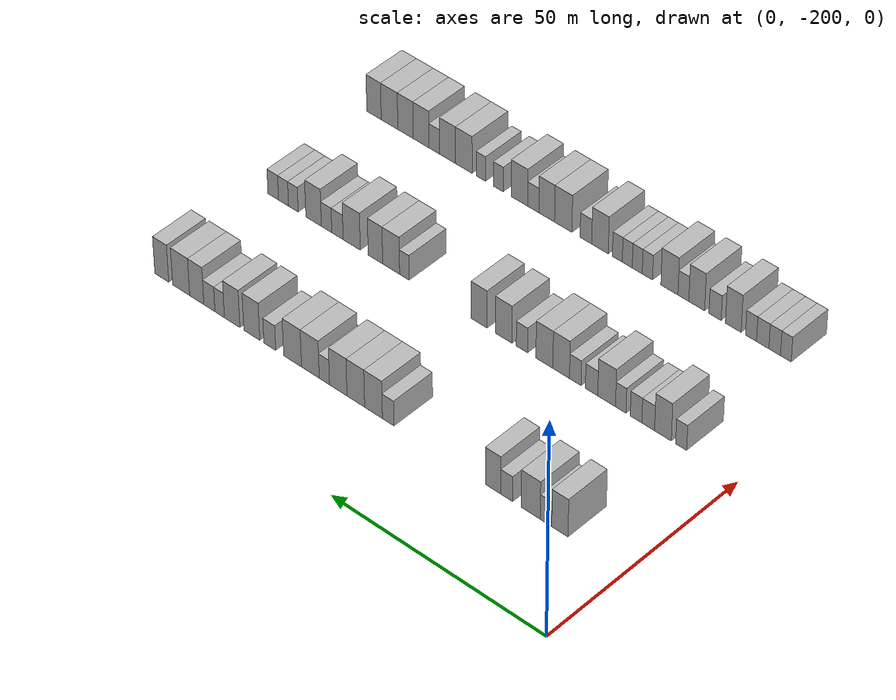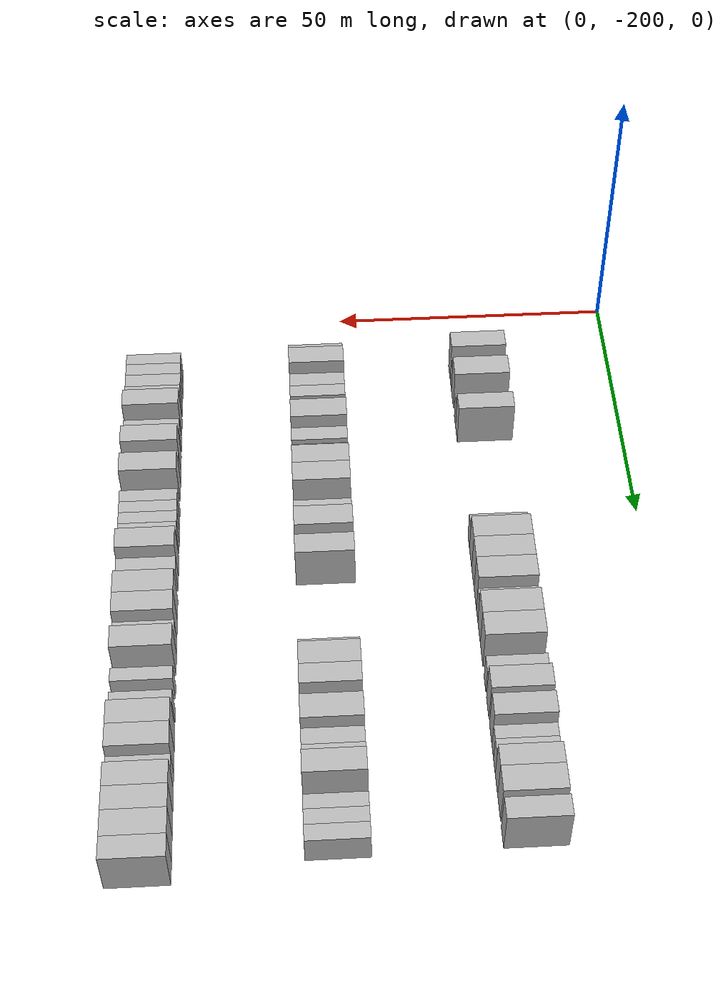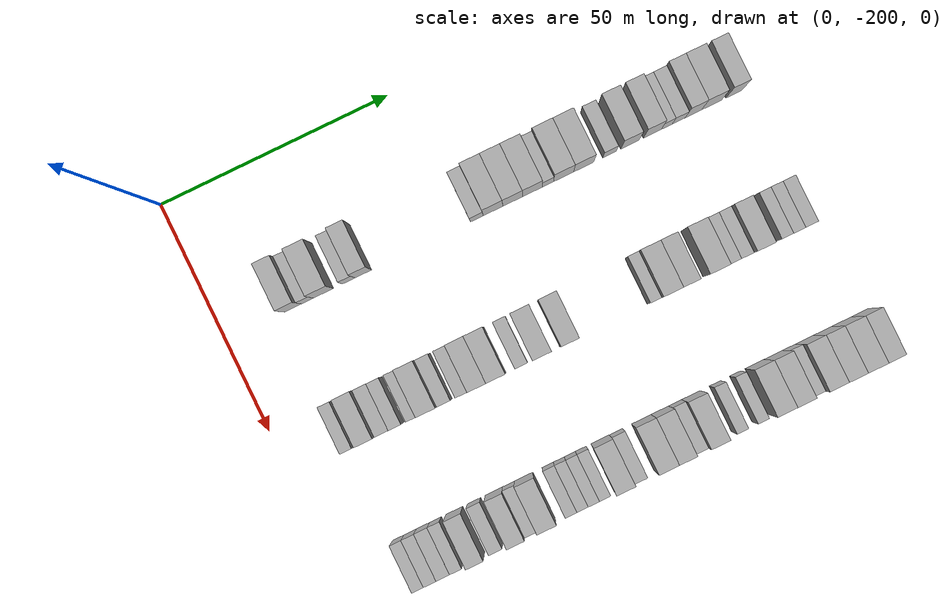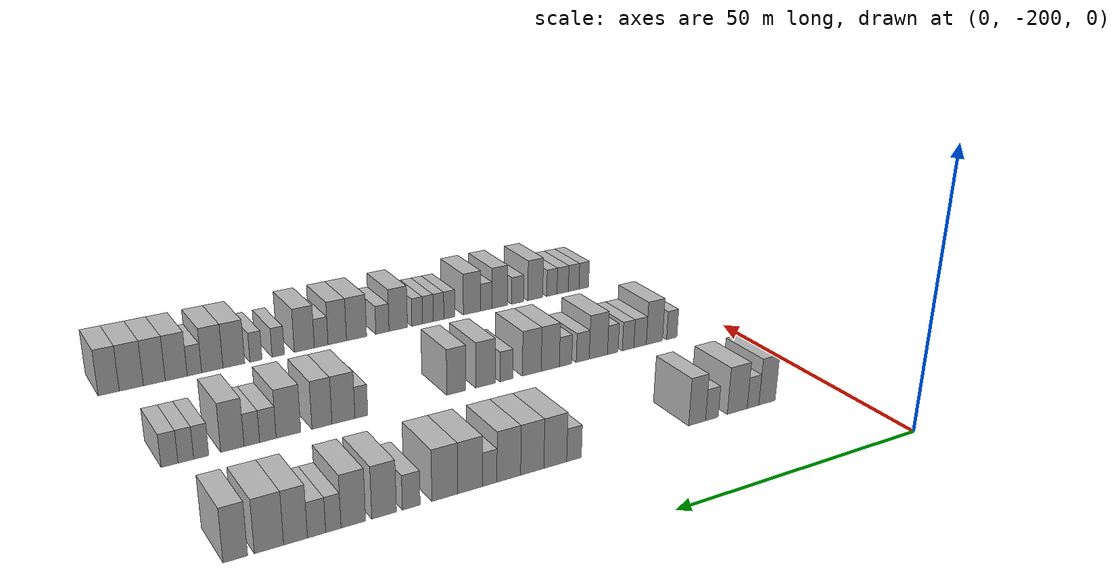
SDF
<sdf version="1.6">
 <world name="default">
  <model name="building_25">
   <static>1</static>
   <pose>25.0000 -185.2030 0 0.000000 0.000000 0.000000</pose>
   <link name="link">
    <pose>0 0 4.50 0 0 0</pose>
    <collision name="collision"><geometry><box><size>10.0000 3.7373 9.0000</size></box></geometry></collision>
    <visual name="visual">
     <cast_shadows>0</cast_shadows>
     <geometry><box><size>10.0000 3.7373 9.0000</size></box></geometry>
     <material>
      <script>
       <uri>model://HANNAS_wall/materials/scripts</uri>
       <uri>model://HANNAS_wall/materials/textures</uri>
       <name>vrc/HANNAS_wall</name>
      </script>
     </material>
    </visual>
   </link>
  </model>
  <model name="building_26">
   <static>1</static>
   <pose>25.0000 -182.0148 0 0.000000 0.000000 0.000000</pose>
   <link name="link">
    <pose>0 0 3.00 0 0 0</pose>
    <collision name="collision"><geometry><box><size>10.0000 2.6391 6.0000</size></box></geometry></collision>
    <visual name="visual">
     <cast_shadows>0</cast_shadows>
     <geometry><box><size>10.0000 2.6391 6.0000</size></box></geometry>
     <material>
      <script>
       <uri>model://HANNAS_wall/materials/scripts</uri>
       <uri>model://HANNAS_wall/materials/textures</uri>
       <name>vrc/HANNAS_wall</name>
      </script>
     </material>
    </visual>
   </link>
  </model>
  <model name="building_27">
   <static>1</static>
   <pose>25.0000 -178.4865 0 0.000000 0.000000 0.000000</pose>
   <link name="link">
    <pose>0 0 4.50 0 0 0</pose>
    <collision name="collision"><geometry><box><size>10.0000 4.4174 9.0000</size></box></geometry></collision>
    <visual name="visual">
     <cast_shadows>0</cast_shadows>
     <geometry><box><size>10.0000 4.4174 9.0000</size></box></geometry>
     <material>
      <script>
       <uri>model://HANNAS_wall/materials/scripts</uri>
       <uri>model://HANNAS_wall/materials/textures</uri>
       <name>vrc/HANNAS_wall</name>
      </script>
     </material>
    </visual>
   </link>
  </model>
  <model name="building_28">
   <static>1</static>
   <pose>25.0000 -172.8996 0 0.000000 0.000000 0.000000</pose>
   <link name="link">
    <pose>0 0 3.00 0 0 0</pose>
    <collision name="collision"><geometry><box><size>10.0000 2.7565 6.0000</size></box></geometry></collision>
    <visual name="visual">
     <cast_shadows>0</cast_shadows>
     <geometry><box><size>10.0000 2.7565 6.0000</size></box></geometry>
     <material>
      <script>
       <uri>model://HANNAS_wall/materials/scripts</uri>
       <uri>model://HANNAS_wall/materials/textures</uri>
       <name>vrc/HANNAS_wall</name>
      </script>
     </material>
    </visual>
   </link>
  </model>
  <model name="building_29">
   <static>1</static>
   <pose>25.0000 -169.7082 0 0.000000 0.000000 0.000000</pose>
   <link name="link">
    <pose>0 0 4.50 0 0 0</pose>
    <collision name="collision"><geometry><box><size>10.0000 3.6262 9.0000</size></box></geometry></collision>
    <visual name="visual">
     <cast_shadows>0</cast_shadows>
     <geometry><box><size>10.0000 3.6262 9.0000</size></box></geometry>
     <material>
      <script>
       <uri>model://HANNAS_wall/materials/scripts</uri>
       <uri>model://HANNAS_wall/materials/textures</uri>
       <name>vrc/HANNAS_wall</name>
      </script>
     </material>
    </visual>
   </link>
  </model>
  <model name="building_30">
   <static>1</static>
   <pose>25.0000 -144.6660 0 0.000000 0.000000 0.000000</pose>
   <link name="link">
    <pose>0 0 3.00 0 0 0</pose>
    <collision name="collision"><geometry><box><size>10.0000 2.8195 6.0000</size></box></geometry></collision>
    <visual name="visual">
     <cast_shadows>0</cast_shadows>
     <geometry><box><size>10.0000 2.8195 6.0000</size></box></geometry>
     <material>
      <script>
       <uri>model://HANNAS_wall/materials/scripts</uri>
       <uri>model://HANNAS_wall/materials/textures</uri>
       <name>vrc/HANNAS_wall</name>
      </script>
     </material>
    </visual>
   </link>
  </model>
  <model name="building_31">
   <static>1</static>
   <pose>25.0000 -141.0924 0 0.000000 0.000000 0.000000</pose>
   <link name="link">
    <pose>0 0 4.50 0 0 0</pose>
    <collision name="collision"><geometry><box><size>10.0000 4.3277 9.0000</size></box></geometry></collision>
    <visual name="visual">
     <cast_shadows>0</cast_shadows>
     <geometry><box><size>10.0000 4.3277 9.0000</size></box></geometry>
     <material>
      <script>
       <uri>model://HANNAS_wall/materials/scripts</uri>
       <uri>model://HANNAS_wall/materials/textures</uri>
       <name>vrc/HANNAS_wall</name>
      </script>
     </material>
    </visual>
   </link>
  </model>
  <model name="building_32">
   <static>1</static>
   <pose>25.0000 -136.7739 0 0.000000 0.000000 0.000000</pose>
   <link name="link">
    <pose>0 0 4.50 0 0 0</pose>
    <collision name="collision"><geometry><box><size>10.0000 4.3092 9.0000</size></box></geometry></collision>
    <visual name="visual">
     <cast_shadows>0</cast_shadows>
     <geometry><box><size>10.0000 4.3092 9.0000</size></box></geometry>
     <material>
      <script>
       <uri>model://HANNAS_wall/materials/scripts</uri>
       <uri>model://HANNAS_wall/materials/textures</uri>
       <name>vrc/HANNAS_wall</name>
      </script>
     </material>
    </visual>
   </link>
  </model>
  <model name="building_33">
   <static>1</static>
   <pose>25.0000 -132.4627 0 0.000000 0.000000 0.000000</pose>
   <link name="link">
    <pose>0 0 4.50 0 0 0</pose>
    <collision name="collision"><geometry><box><size>10.0000 4.3133 9.0000</size></box></geometry></collision>
    <visual name="visual">
     <cast_shadows>0</cast_shadows>
     <geometry><box><size>10.0000 4.3133 9.0000</size></box></geometry>
     <material>
      <script>
       <uri>model://HANNAS_wall/materials/scripts</uri>
       <uri>model://HANNAS_wall/materials/textures</uri>
       <name>vrc/HANNAS_wall</name>
      </script>
     </material>
    </visual>
   </link>
  </model>
  <model name="building_34">
   <static>1</static>
   <pose>25.0000 -129.0370 0 0.000000 0.000000 0.000000</pose>
   <link name="link">
    <pose>0 0 3.00 0 0 0</pose>
    <collision name="collision"><geometry><box><size>10.0000 2.5381 6.0000</size></box></geometry></collision>
    <visual name="visual">
     <cast_shadows>0</cast_shadows>
     <geometry><box><size>10.0000 2.5381 6.0000</size></box></geometry>
     <material>
      <script>
       <uri>model://HANNAS_wall/materials/scripts</uri>
       <uri>model://HANNAS_wall/materials/textures</uri>
       <name>vrc/HANNAS_wall</name>
      </script>
     </material>
    </visual>
   </link>
  </model>
  <model name="building_35">
   <static>1</static>
   <pose>25.0000 -125.5571 0 0.000000 0.000000 0.000000</pose>
   <link name="link">
    <pose>0 0 4.50 0 0 0</pose>
    <collision name="collision"><geometry><box><size>10.0000 4.4215 9.0000</size></box></geometry></collision>
    <visual name="visual">
     <cast_shadows>0</cast_shadows>
     <geometry><box><size>10.0000 4.4215 9.0000</size></box></geometry>
     <material>
      <script>
       <uri>model://HANNAS_wall/materials/scripts</uri>
       <uri>model://HANNAS_wall/materials/textures</uri>
       <name>vrc/HANNAS_wall</name>
      </script>
     </material>
    </visual>
   </link>
  </model>
  <model name="building_36">
   <static>1</static>
   <pose>25.0000 -121.1176 0 0.000000 0.000000 0.000000</pose>
   <link name="link">
    <pose>0 0 4.50 0 0 0</pose>
    <collision name="collision"><geometry><box><size>10.0000 4.4574 9.0000</size></box></geometry></collision>
    <visual name="visual">
     <cast_shadows>0</cast_shadows>
     <geometry><box><size>10.0000 4.4574 9.0000</size></box></geometry>
     <material>
      <script>
       <uri>model://HANNAS_wall/materials/scripts</uri>
       <uri>model://HANNAS_wall/materials/textures</uri>
       <name>vrc/HANNAS_wall</name>
      </script>
     </material>
    </visual>
   </link>
  </model>
  <model name="building_37">
   <static>1</static>
   <pose>25.0000 -115.3986 0 0.000000 0.000000 0.000000</pose>
   <link name="link">
    <pose>0 0 3.00 0 0 0</pose>
    <collision name="collision"><geometry><box><size>10.0000 2.9807 6.0000</size></box></geometry></collision>
    <visual name="visual">
     <cast_shadows>0</cast_shadows>
     <geometry><box><size>10.0000 2.9807 6.0000</size></box></geometry>
     <material>
      <script>
       <uri>model://HANNAS_wall/materials/scripts</uri>
       <uri>model://HANNAS_wall/materials/textures</uri>
       <name>vrc/HANNAS_wall</name>
      </script>
     </material>
    </visual>
   </link>
  </model>
  <model name="building_38">
   <static>1</static>
   <pose>25.0000 -110.8825 0 0.000000 0.000000 0.000000</pose>
   <link name="link">
    <pose>0 0 4.50 0 0 0</pose>
    <collision name="collision"><geometry><box><size>10.0000 4.0514 9.0000</size></box></geometry></collision>
    <visual name="visual">
     <cast_shadows>0</cast_shadows>
     <geometry><box><size>10.0000 4.0514 9.0000</size></box></geometry>
     <material>
      <script>
       <uri>model://HANNAS_wall/materials/scripts</uri>
       <uri>model://HANNAS_wall/materials/textures</uri>
       <name>vrc/HANNAS_wall</name>
      </script>
     </material>
    </visual>
   </link>
  </model>
  <model name="building_39">
   <static>1</static>
   <pose>25.0000 -105.8816 0 0.000000 0.000000 0.000000</pose>
   <link name="link">
    <pose>0 0 4.50 0 0 0</pose>
    <collision name="collision"><geometry><box><size>10.0000 3.9504 9.0000</size></box></geometry></collision>
    <visual name="visual">
     <cast_shadows>0</cast_shadows>
     <geometry><box><size>10.0000 3.9504 9.0000</size></box></geometry>
     <material>
      <script>
       <uri>model://HANNAS_wall/materials/scripts</uri>
       <uri>model://HANNAS_wall/materials/textures</uri>
       <name>vrc/HANNAS_wall</name>
      </script>
     </material>
    </visual>
   </link>
  </model>
  <model name="building_40">
   <static>1</static>
   <pose>25.0000 -102.6964 0 0.000000 0.000000 0.000000</pose>
   <link name="link">
    <pose>0 0 3.00 0 0 0</pose>
    <collision name="collision"><geometry><box><size>10.0000 2.4201 6.0000</size></box></geometry></collision>
    <visual name="visual">
     <cast_shadows>0</cast_shadows>
     <geometry><box><size>10.0000 2.4201 6.0000</size></box></geometry>
     <material>
      <script>
       <uri>model://HANNAS_wall/materials/scripts</uri>
       <uri>model://HANNAS_wall/materials/textures</uri>
       <name>vrc/HANNAS_wall</name>
      </script>
     </material>
    </visual>
   </link>
  </model>
  <model name="building_41">
   <static>1</static>
   <pose>25.0000 -100.0586 0 0.000000 0.000000 0.000000</pose>
   <link name="link">
    <pose>0 0 3.00 0 0 0</pose>
    <collision name="collision"><geometry><box><size>10.0000 2.8555 6.0000</size></box></geometry></collision>
    <visual name="visual">
     <cast_shadows>0</cast_shadows>
     <geometry><box><size>10.0000 2.8555 6.0000</size></box></geometry>
     <material>
      <script>
       <uri>model://HANNAS_wall/materials/scripts</uri>
       <uri>model://HANNAS_wall/materials/textures</uri>
       <name>vrc/HANNAS_wall</name>
      </script>
     </material>
    </visual>
   </link>
  </model>
  <model name="building_42">
   <static>1</static>
   <pose>25.0000 -96.8049 0 0.000000 0.000000 0.000000</pose>
   <link name="link">
    <pose>0 0 4.50 0 0 0</pose>
    <collision name="collision"><geometry><box><size>10.0000 3.6517 9.0000</size></box></geometry></collision>
    <visual name="visual">
     <cast_shadows>0</cast_shadows>
     <geometry><box><size>10.0000 3.6517 9.0000</size></box></geometry>
     <material>
      <script>
       <uri>model://HANNAS_wall/materials/scripts</uri>
       <uri>model://HANNAS_wall/materials/textures</uri>
       <name>vrc/HANNAS_wall</name>
      </script>
     </material>
    </visual>
   </link>
  </model>
  <model name="building_43">
   <static>1</static>
   <pose>25.0000 -92.7702 0 0.000000 0.000000 0.000000</pose>
   <link name="link">
    <pose>0 0 4.50 0 0 0</pose>
    <collision name="collision"><geometry><box><size>10.0000 4.4177 9.0000</size></box></geometry></collision>
    <visual name="visual">
     <cast_shadows>0</cast_shadows>
     <geometry><box><size>10.0000 4.4177 9.0000</size></box></geometry>
     <material>
      <script>
       <uri>model://HANNAS_wall/materials/scripts</uri>
       <uri>model://HANNAS_wall/materials/textures</uri>
       <name>vrc/HANNAS_wall</name>
      </script>
     </material>
    </visual>
   </link>
  </model>
  <model name="building_44">
   <static>1</static>
   <pose>25.0000 -87.7574 0 0.000000 0.000000 0.000000</pose>
   <link name="link">
    <pose>0 0 4.50 0 0 0</pose>
    <collision name="collision"><geometry><box><size>10.0000 3.6081 9.0000</size></box></geometry></collision>
    <visual name="visual">
     <cast_shadows>0</cast_shadows>
     <geometry><box><size>10.0000 3.6081 9.0000</size></box></geometry>
     <material>
      <script>
       <uri>model://HANNAS_wall/materials/scripts</uri>
       <uri>model://HANNAS_wall/materials/textures</uri>
       <name>vrc/HANNAS_wall</name>
      </script>
     </material>
    </visual>
   </link>
  </model>
  <model name="building_166">
   <static>1</static>
   <pose>55.0000 -187.0393 0 0.000000 0.000000 0.000000</pose>
   <link name="link">
    <pose>0 0 3.00 0 0 0</pose>
    <collision name="collision"><geometry><box><size>10.0000 2.5420 6.0000</size></box></geometry></collision>
    <visual name="visual">
     <cast_shadows>0</cast_shadows>
     <geometry><box><size>10.0000 2.5420 6.0000</size></box></geometry>
     <material>
      <script>
       <uri>model://HANNAS_wall/materials/scripts</uri>
       <uri>model://HANNAS_wall/materials/textures</uri>
       <name>vrc/HANNAS_wall</name>
      </script>
     </material>
    </visual>
   </link>
  </model>
  <model name="building_167">
   <static>1</static>
   <pose>55.0000 -182.8317 0 0.000000 0.000000 0.000000</pose>
   <link name="link">
    <pose>0 0 4.50 0 0 0</pose>
    <collision name="collision"><geometry><box><size>10.0000 3.8733 9.0000</size></box></geometry></collision>
    <visual name="visual">
     <cast_shadows>0</cast_shadows>
     <geometry><box><size>10.0000 3.8733 9.0000</size></box></geometry>
     <material>
      <script>
       <uri>model://HANNAS_wall/materials/scripts</uri>
       <uri>model://HANNAS_wall/materials/textures</uri>
       <name>vrc/HANNAS_wall</name>
      </script>
     </material>
    </visual>
   </link>
  </model>
  <model name="building_168">
   <static>1</static>
   <pose>55.0000 -179.4108 0 0.000000 0.000000 0.000000</pose>
   <link name="link">
    <pose>0 0 3.00 0 0 0</pose>
    <collision name="collision"><geometry><box><size>10.0000 2.9685 6.0000</size></box></geometry></collision>
    <visual name="visual">
     <cast_shadows>0</cast_shadows>
     <geometry><box><size>10.0000 2.9685 6.0000</size></box></geometry>
     <material>
      <script>
       <uri>model://HANNAS_wall/materials/scripts</uri>
       <uri>model://HANNAS_wall/materials/textures</uri>
       <name>vrc/HANNAS_wall</name>
      </script>
     </material>
    </visual>
   </link>
  </model>
  <model name="building_169">
   <static>1</static>
   <pose>55.0000 -176.5748 0 0.000000 0.000000 0.000000</pose>
   <link name="link">
    <pose>0 0 3.00 0 0 0</pose>
    <collision name="collision"><geometry><box><size>10.0000 2.7036 6.0000</size></box></geometry></collision>
    <visual name="visual">
     <cast_shadows>0</cast_shadows>
     <geometry><box><size>10.0000 2.7036 6.0000</size></box></geometry>
     <material>
      <script>
       <uri>model://HANNAS_wall/materials/scripts</uri>
       <uri>model://HANNAS_wall/materials/textures</uri>
       <name>vrc/HANNAS_wall</name>
      </script>
     </material>
    </visual>
   </link>
  </model>
  <model name="building_170">
   <static>1</static>
   <pose>55.0000 -172.9996 0 0.000000 0.000000 0.000000</pose>
   <link name="link">
    <pose>0 0 3.00 0 0 0</pose>
    <collision name="collision"><geometry><box><size>10.0000 2.4468 6.0000</size></box></geometry></collision>
    <visual name="visual">
     <cast_shadows>0</cast_shadows>
     <geometry><box><size>10.0000 2.4468 6.0000</size></box></geometry>
     <material>
      <script>
       <uri>model://HANNAS_wall/materials/scripts</uri>
       <uri>model://HANNAS_wall/materials/textures</uri>
       <name>vrc/HANNAS_wall</name>
      </script>
     </material>
    </visual>
   </link>
  </model>
  <model name="building_171">
   <static>1</static>
   <pose>55.0000 -169.6840 0 0.000000 0.000000 0.000000</pose>
   <link name="link">
    <pose>0 0 4.50 0 0 0</pose>
    <collision name="collision"><geometry><box><size>10.0000 4.1843 9.0000</size></box></geometry></collision>
    <visual name="visual">
     <cast_shadows>0</cast_shadows>
     <geometry><box><size>10.0000 4.1843 9.0000</size></box></geometry>
     <material>
      <script>
       <uri>model://HANNAS_wall/materials/scripts</uri>
       <uri>model://HANNAS_wall/materials/textures</uri>
       <name>vrc/HANNAS_wall</name>
      </script>
     </material>
    </visual>
   </link>
  </model>
  <model name="building_172">
   <static>1</static>
   <pose>55.0000 -166.1219 0 0.000000 0.000000 0.000000</pose>
   <link name="link">
    <pose>0 0 3.00 0 0 0</pose>
    <collision name="collision"><geometry><box><size>10.0000 2.9399 6.0000</size></box></geometry></collision>
    <visual name="visual">
     <cast_shadows>0</cast_shadows>
     <geometry><box><size>10.0000 2.9399 6.0000</size></box></geometry>
     <material>
      <script>
       <uri>model://HANNAS_wall/materials/scripts</uri>
       <uri>model://HANNAS_wall/materials/textures</uri>
       <name>vrc/HANNAS_wall</name>
      </script>
     </material>
    </visual>
   </link>
  </model>
  <model name="building_173">
   <static>1</static>
   <pose>55.0000 -162.2705 0 0.000000 0.000000 0.000000</pose>
   <link name="link">
    <pose>0 0 3.00 0 0 0</pose>
    <collision name="collision"><geometry><box><size>10.0000 2.7629 6.0000</size></box></geometry></collision>
    <visual name="visual">
     <cast_shadows>0</cast_shadows>
     <geometry><box><size>10.0000 2.7629 6.0000</size></box></geometry>
     <material>
      <script>
       <uri>model://HANNAS_wall/materials/scripts</uri>
       <uri>model://HANNAS_wall/materials/textures</uri>
       <name>vrc/HANNAS_wall</name>
      </script>
     </material>
    </visual>
   </link>
  </model>
  <model name="building_174">
   <static>1</static>
   <pose>55.0000 -158.9025 0 0.000000 0.000000 0.000000</pose>
   <link name="link">
    <pose>0 0 4.50 0 0 0</pose>
    <collision name="collision"><geometry><box><size>10.0000 3.9733 9.0000</size></box></geometry></collision>
    <visual name="visual">
     <cast_shadows>0</cast_shadows>
     <geometry><box><size>10.0000 3.9733 9.0000</size></box></geometry>
     <material>
      <script>
       <uri>model://HANNAS_wall/materials/scripts</uri>
       <uri>model://HANNAS_wall/materials/textures</uri>
       <name>vrc/HANNAS_wall</name>
      </script>
     </material>
    </visual>
   </link>
  </model>
  <model name="building_175">
   <static>1</static>
   <pose>55.0000 -154.8757 0 0.000000 0.000000 0.000000</pose>
   <link name="link">
    <pose>0 0 4.50 0 0 0</pose>
    <collision name="collision"><geometry><box><size>10.0000 4.0803 9.0000</size></box></geometry></collision>
    <visual name="visual">
     <cast_shadows>0</cast_shadows>
     <geometry><box><size>10.0000 4.0803 9.0000</size></box></geometry>
     <material>
      <script>
       <uri>model://HANNAS_wall/materials/scripts</uri>
       <uri>model://HANNAS_wall/materials/textures</uri>
       <name>vrc/HANNAS_wall</name>
      </script>
     </material>
    </visual>
   </link>
  </model>
  <model name="building_176">
   <static>1</static>
   <pose>55.0000 -149.4608 0 0.000000 0.000000 0.000000</pose>
   <link name="link">
    <pose>0 0 3.00 0 0 0</pose>
    <collision name="collision"><geometry><box><size>10.0000 2.7494 6.0000</size></box></geometry></collision>
    <visual name="visual">
     <cast_shadows>0</cast_shadows>
     <geometry><box><size>10.0000 2.7494 6.0000</size></box></geometry>
     <material>
      <script>
       <uri>model://HANNAS_wall/materials/scripts</uri>
       <uri>model://HANNAS_wall/materials/textures</uri>
       <name>vrc/HANNAS_wall</name>
      </script>
     </material>
    </visual>
   </link>
  </model>
  <model name="building_177">
   <static>1</static>
   <pose>55.0000 -145.0550 0 0.000000 0.000000 0.000000</pose>
   <link name="link">
    <pose>0 0 4.50 0 0 0</pose>
    <collision name="collision"><geometry><box><size>10.0000 4.0623 9.0000</size></box></geometry></collision>
    <visual name="visual">
     <cast_shadows>0</cast_shadows>
     <geometry><box><size>10.0000 4.0623 9.0000</size></box></geometry>
     <material>
      <script>
       <uri>model://HANNAS_wall/materials/scripts</uri>
       <uri>model://HANNAS_wall/materials/textures</uri>
       <name>vrc/HANNAS_wall</name>
      </script>
     </material>
    </visual>
   </link>
  </model>
  <model name="building_178">
   <static>1</static>
   <pose>55.0000 -139.0756 0 0.000000 0.000000 0.000000</pose>
   <link name="link">
    <pose>0 0 4.50 0 0 0</pose>
    <collision name="collision"><geometry><box><size>10.0000 3.8965 9.0000</size></box></geometry></collision>
    <visual name="visual">
     <cast_shadows>0</cast_shadows>
     <geometry><box><size>10.0000 3.8965 9.0000</size></box></geometry>
     <material>
      <script>
       <uri>model://HANNAS_wall/materials/scripts</uri>
       <uri>model://HANNAS_wall/materials/textures</uri>
       <name>vrc/HANNAS_wall</name>
      </script>
     </material>
    </visual>
   </link>
  </model>
  <model name="building_179">
   <static>1</static>
   <pose>55.0000 -120.5068 0 0.000000 0.000000 0.000000</pose>
   <link name="link">
    <pose>0 0 3.00 0 0 0</pose>
    <collision name="collision"><geometry><box><size>10.0000 2.4137 6.0000</size></box></geometry></collision>
    <visual name="visual">
     <cast_shadows>0</cast_shadows>
     <geometry><box><size>10.0000 2.4137 6.0000</size></box></geometry>
     <material>
      <script>
       <uri>model://HANNAS_wall/materials/scripts</uri>
       <uri>model://HANNAS_wall/materials/textures</uri>
       <name>vrc/HANNAS_wall</name>
      </script>
     </material>
    </visual>
   </link>
  </model>
  <model name="building_180">
   <static>1</static>
   <pose>55.0000 -117.1706 0 0.000000 0.000000 0.000000</pose>
   <link name="link">
    <pose>0 0 4.50 0 0 0</pose>
    <collision name="collision"><geometry><box><size>10.0000 4.2585 9.0000</size></box></geometry></collision>
    <visual name="visual">
     <cast_shadows>0</cast_shadows>
     <geometry><box><size>10.0000 4.2585 9.0000</size></box></geometry>
     <material>
      <script>
       <uri>model://HANNAS_wall/materials/scripts</uri>
       <uri>model://HANNAS_wall/materials/textures</uri>
       <name>vrc/HANNAS_wall</name>
      </script>
     </material>
    </visual>
   </link>
  </model>
  <model name="building_181">
   <static>1</static>
   <pose>55.0000 -113.2096 0 0.000000 0.000000 0.000000</pose>
   <link name="link">
    <pose>0 0 4.50 0 0 0</pose>
    <collision name="collision"><geometry><box><size>10.0000 3.6636 9.0000</size></box></geometry></collision>
    <visual name="visual">
     <cast_shadows>0</cast_shadows>
     <geometry><box><size>10.0000 3.6636 9.0000</size></box></geometry>
     <material>
      <script>
       <uri>model://HANNAS_wall/materials/scripts</uri>
       <uri>model://HANNAS_wall/materials/textures</uri>
       <name>vrc/HANNAS_wall</name>
      </script>
     </material>
    </visual>
   </link>
  </model>
  <model name="building_182">
   <static>1</static>
   <pose>55.0000 -107.1885 0 0.000000 0.000000 0.000000</pose>
   <link name="link">
    <pose>0 0 4.50 0 0 0</pose>
    <collision name="collision"><geometry><box><size>10.0000 4.3784 9.0000</size></box></geometry></collision>
    <visual name="visual">
     <cast_shadows>0</cast_shadows>
     <geometry><box><size>10.0000 4.3784 9.0000</size></box></geometry>
     <material>
      <script>
       <uri>model://HANNAS_wall/materials/scripts</uri>
       <uri>model://HANNAS_wall/materials/textures</uri>
       <name>vrc/HANNAS_wall</name>
      </script>
     </material>
    </visual>
   </link>
  </model>
  <model name="building_183">
   <static>1</static>
   <pose>55.0000 -103.5472 0 0.000000 0.000000 0.000000</pose>
   <link name="link">
    <pose>0 0 3.00 0 0 0</pose>
    <collision name="collision"><geometry><box><size>10.0000 2.9043 6.0000</size></box></geometry></collision>
    <visual name="visual">
     <cast_shadows>0</cast_shadows>
     <geometry><box><size>10.0000 2.9043 6.0000</size></box></geometry>
     <material>
      <script>
       <uri>model://HANNAS_wall/materials/scripts</uri>
       <uri>model://HANNAS_wall/materials/textures</uri>
       <name>vrc/HANNAS_wall</name>
      </script>
     </material>
    </visual>
   </link>
  </model>
  <model name="building_184">
   <static>1</static>
   <pose>55.0000 -100.7546 0 0.000000 0.000000 0.000000</pose>
   <link name="link">
    <pose>0 0 3.00 0 0 0</pose>
    <collision name="collision"><geometry><box><size>10.0000 2.6809 6.0000</size></box></geometry></collision>
    <visual name="visual">
     <cast_shadows>0</cast_shadows>
     <geometry><box><size>10.0000 2.6809 6.0000</size></box></geometry>
     <material>
      <script>
       <uri>model://HANNAS_wall/materials/scripts</uri>
       <uri>model://HANNAS_wall/materials/textures</uri>
       <name>vrc/HANNAS_wall</name>
      </script>
     </material>
    </visual>
   </link>
  </model>
  <model name="building_185">
   <static>1</static>
   <pose>55.0000 -97.4168 0 0.000000 0.000000 0.000000</pose>
   <link name="link">
    <pose>0 0 4.50 0 0 0</pose>
    <collision name="collision"><geometry><box><size>10.0000 3.9946 9.0000</size></box></geometry></collision>
    <visual name="visual">
     <cast_shadows>0</cast_shadows>
     <geometry><box><size>10.0000 3.9946 9.0000</size></box></geometry>
     <material>
      <script>
       <uri>model://HANNAS_wall/materials/scripts</uri>
       <uri>model://HANNAS_wall/materials/textures</uri>
       <name>vrc/HANNAS_wall</name>
      </script>
     </material>
    </visual>
   </link>
  </model>
  <model name="building_186">
   <static>1</static>
   <pose>55.0000 -92.1649 0 0.000000 0.000000 0.000000</pose>
   <link name="link">
    <pose>0 0 3.00 0 0 0</pose>
    <collision name="collision"><geometry><box><size>10.0000 2.5092 6.0000</size></box></geometry></collision>
    <visual name="visual">
     <cast_shadows>0</cast_shadows>
     <geometry><box><size>10.0000 2.5092 6.0000</size></box></geometry>
     <material>
      <script>
       <uri>model://HANNAS_wall/materials/scripts</uri>
       <uri>model://HANNAS_wall/materials/textures</uri>
       <name>vrc/HANNAS_wall</name>
      </script>
     </material>
    </visual>
   </link>
  </model>
  <model name="building_187">
   <static>1</static>
   <pose>55.0000 -89.6146 0 0.000000 0.000000 0.000000</pose>
   <link name="link">
    <pose>0 0 3.00 0 0 0</pose>
    <collision name="collision"><geometry><box><size>10.0000 2.5914 6.0000</size></box></geometry></collision>
    <visual name="visual">
     <cast_shadows>0</cast_shadows>
     <geometry><box><size>10.0000 2.5914 6.0000</size></box></geometry>
     <material>
      <script>
       <uri>model://HANNAS_wall/materials/scripts</uri>
       <uri>model://HANNAS_wall/materials/textures</uri>
       <name>vrc/HANNAS_wall</name>
      </script>
     </material>
    </visual>
   </link>
  </model>
  <model name="building_188">
   <static>1</static>
   <pose>55.0000 -86.9387 0 0.000000 0.000000 0.000000</pose>
   <link name="link">
    <pose>0 0 3.00 0 0 0</pose>
    <collision name="collision"><geometry><box><size>10.0000 2.7605 6.0000</size></box></geometry></collision>
    <visual name="visual">
     <cast_shadows>0</cast_shadows>
     <geometry><box><size>10.0000 2.7605 6.0000</size></box></geometry>
     <material>
      <script>
       <uri>model://HANNAS_wall/materials/scripts</uri>
       <uri>model://HANNAS_wall/materials/textures</uri>
       <name>vrc/HANNAS_wall</name>
      </script>
     </material>
    </visual>
   </link>
  </model>
  <model name="building_300">
   <static>1</static>
   <pose>85.0000 -186.1632 0 0.000000 0.000000 0.000000</pose>
   <link name="link">
    <pose>0 0 3.00 0 0 0</pose>
    <collision name="collision"><geometry><box><size>10.0000 2.4941 6.0000</size></box></geometry></collision>
    <visual name="visual">
     <cast_shadows>0</cast_shadows>
     <geometry><box><size>10.0000 2.4941 6.0000</size></box></geometry>
     <material>
      <script>
       <uri>model://HANNAS_wall/materials/scripts</uri>
       <uri>model://HANNAS_wall/materials/textures</uri>
       <name>vrc/HANNAS_wall</name>
      </script>
     </material>
    </visual>
   </link>
  </model>
  <model name="building_301">
   <static>1</static>
   <pose>85.0000 -183.5627 0 0.000000 0.000000 0.000000</pose>
   <link name="link">
    <pose>0 0 3.00 0 0 0</pose>
    <collision name="collision"><geometry><box><size>10.0000 2.7068 6.0000</size></box></geometry></collision>
    <visual name="visual">
     <cast_shadows>0</cast_shadows>
     <geometry><box><size>10.0000 2.7068 6.0000</size></box></geometry>
     <material>
      <script>
       <uri>model://HANNAS_wall/materials/scripts</uri>
       <uri>model://HANNAS_wall/materials/textures</uri>
       <name>vrc/HANNAS_wall</name>
      </script>
     </material>
    </visual>
   </link>
  </model>
  <model name="building_302">
   <static>1</static>
   <pose>85.0000 -180.7699 0 0.000000 0.000000 0.000000</pose>
   <link name="link">
    <pose>0 0 3.00 0 0 0</pose>
    <collision name="collision"><geometry><box><size>10.0000 2.8789 6.0000</size></box></geometry></collision>
    <visual name="visual">
     <cast_shadows>0</cast_shadows>
     <geometry><box><size>10.0000 2.8789 6.0000</size></box></geometry>
     <material>
      <script>
       <uri>model://HANNAS_wall/materials/scripts</uri>
       <uri>model://HANNAS_wall/materials/textures</uri>
       <name>vrc/HANNAS_wall</name>
      </script>
     </material>
    </visual>
   </link>
  </model>
  <model name="building_303">
   <static>1</static>
   <pose>85.0000 -178.0381 0 0.000000 0.000000 0.000000</pose>
   <link name="link">
    <pose>0 0 3.00 0 0 0</pose>
    <collision name="collision"><geometry><box><size>10.0000 2.5845 6.0000</size></box></geometry></collision>
    <visual name="visual">
     <cast_shadows>0</cast_shadows>
     <geometry><box><size>10.0000 2.5845 6.0000</size></box></geometry>
     <material>
      <script>
       <uri>model://HANNAS_wall/materials/scripts</uri>
       <uri>model://HANNAS_wall/materials/textures</uri>
       <name>vrc/HANNAS_wall</name>
      </script>
     </material>
    </visual>
   </link>
  </model>
  <model name="building_304">
   <static>1</static>
   <pose>85.0000 -173.8910 0 0.000000 0.000000 0.000000</pose>
   <link name="link">
    <pose>0 0 4.50 0 0 0</pose>
    <collision name="collision"><geometry><box><size>10.0000 3.7096 9.0000</size></box></geometry></collision>
    <visual name="visual">
     <cast_shadows>0</cast_shadows>
     <geometry><box><size>10.0000 3.7096 9.0000</size></box></geometry>
     <material>
      <script>
       <uri>model://HANNAS_wall/materials/scripts</uri>
       <uri>model://HANNAS_wall/materials/textures</uri>
       <name>vrc/HANNAS_wall</name>
      </script>
     </material>
    </visual>
   </link>
  </model>
  <model name="building_305">
   <static>1</static>
   <pose>85.0000 -169.5780 0 0.000000 0.000000 0.000000</pose>
   <link name="link">
    <pose>0 0 3.00 0 0 0</pose>
    <collision name="collision"><geometry><box><size>10.0000 2.9165 6.0000</size></box></geometry></collision>
    <visual name="visual">
     <cast_shadows>0</cast_shadows>
     <geometry><box><size>10.0000 2.9165 6.0000</size></box></geometry>
     <material>
      <script>
       <uri>model://HANNAS_wall/materials/scripts</uri>
       <uri>model://HANNAS_wall/materials/textures</uri>
       <name>vrc/HANNAS_wall</name>
      </script>
     </material>
    </visual>
   </link>
  </model>
  <model name="building_306">
   <static>1</static>
   <pose>85.0000 -165.2330 0 0.000000 0.000000 0.000000</pose>
   <link name="link">
    <pose>0 0 4.50 0 0 0</pose>
    <collision name="collision"><geometry><box><size>10.0000 3.7735 9.0000</size></box></geometry></collision>
    <visual name="visual">
     <cast_shadows>0</cast_shadows>
     <geometry><box><size>10.0000 3.7735 9.0000</size></box></geometry>
     <material>
      <script>
       <uri>model://HANNAS_wall/materials/scripts</uri>
       <uri>model://HANNAS_wall/materials/textures</uri>
       <name>vrc/HANNAS_wall</name>
      </script>
     </material>
    </visual>
   </link>
  </model>
  <model name="building_307">
   <static>1</static>
   <pose>85.0000 -162.0471 0 0.000000 0.000000 0.000000</pose>
   <link name="link">
    <pose>0 0 3.00 0 0 0</pose>
    <collision name="collision"><geometry><box><size>10.0000 2.5982 6.0000</size></box></geometry></collision>
    <visual name="visual">
     <cast_shadows>0</cast_shadows>
     <geometry><box><size>10.0000 2.5982 6.0000</size></box></geometry>
     <material>
      <script>
       <uri>model://HANNAS_wall/materials/scripts</uri>
       <uri>model://HANNAS_wall/materials/textures</uri>
       <name>vrc/HANNAS_wall</name>
      </script>
     </material>
    </visual>
   </link>
  </model>
  <model name="building_308">
   <static>1</static>
   <pose>85.0000 -158.6930 0 0.000000 0.000000 0.000000</pose>
   <link name="link">
    <pose>0 0 4.50 0 0 0</pose>
    <collision name="collision"><geometry><box><size>10.0000 4.1100 9.0000</size></box></geometry></collision>
    <visual name="visual">
     <cast_shadows>0</cast_shadows>
     <geometry><box><size>10.0000 4.1100 9.0000</size></box></geometry>
     <material>
      <script>
       <uri>model://HANNAS_wall/materials/scripts</uri>
       <uri>model://HANNAS_wall/materials/textures</uri>
       <name>vrc/HANNAS_wall</name>
      </script>
     </material>
    </visual>
   </link>
  </model>
  <model name="building_309">
   <static>1</static>
   <pose>85.0000 -153.3896 0 0.000000 0.000000 0.000000</pose>
   <link name="link">
    <pose>0 0 3.00 0 0 0</pose>
    <collision name="collision"><geometry><box><size>10.0000 2.4967 6.0000</size></box></geometry></collision>
    <visual name="visual">
     <cast_shadows>0</cast_shadows>
     <geometry><box><size>10.0000 2.4967 6.0000</size></box></geometry>
     <material>
      <script>
       <uri>model://HANNAS_wall/materials/scripts</uri>
       <uri>model://HANNAS_wall/materials/textures</uri>
       <name>vrc/HANNAS_wall</name>
      </script>
     </material>
    </visual>
   </link>
  </model>
  <model name="building_310">
   <static>1</static>
   <pose>85.0000 -150.9380 0 0.000000 0.000000 0.000000</pose>
   <link name="link">
    <pose>0 0 3.00 0 0 0</pose>
    <collision name="collision"><geometry><box><size>10.0000 2.4066 6.0000</size></box></geometry></collision>
    <visual name="visual">
     <cast_shadows>0</cast_shadows>
     <geometry><box><size>10.0000 2.4066 6.0000</size></box></geometry>
     <material>
      <script>
       <uri>model://HANNAS_wall/materials/scripts</uri>
       <uri>model://HANNAS_wall/materials/textures</uri>
       <name>vrc/HANNAS_wall</name>
      </script>
     </material>
    </visual>
   </link>
  </model>
  <model name="building_311">
   <static>1</static>
   <pose>85.0000 -148.5235 0 0.000000 0.000000 0.000000</pose>
   <link name="link">
    <pose>0 0 3.00 0 0 0</pose>
    <collision name="collision"><geometry><box><size>10.0000 2.4225 6.0000</size></box></geometry></collision>
    <visual name="visual">
     <cast_shadows>0</cast_shadows>
     <geometry><box><size>10.0000 2.4225 6.0000</size></box></geometry>
     <material>
      <script>
       <uri>model://HANNAS_wall/materials/scripts</uri>
       <uri>model://HANNAS_wall/materials/textures</uri>
       <name>vrc/HANNAS_wall</name>
      </script>
     </material>
    </visual>
   </link>
  </model>
  <model name="building_312">
   <static>1</static>
   <pose>85.0000 -146.1077 0 0.000000 0.000000 0.000000</pose>
   <link name="link">
    <pose>0 0 3.00 0 0 0</pose>
    <collision name="collision"><geometry><box><size>10.0000 2.4090 6.0000</size></box></geometry></collision>
    <visual name="visual">
     <cast_shadows>0</cast_shadows>
     <geometry><box><size>10.0000 2.4090 6.0000</size></box></geometry>
     <material>
      <script>
       <uri>model://HANNAS_wall/materials/scripts</uri>
       <uri>model://HANNAS_wall/materials/textures</uri>
       <name>vrc/HANNAS_wall</name>
      </script>
     </material>
    </visual>
   </link>
  </model>
  <model name="building_313">
   <static>1</static>
   <pose>85.0000 -141.8721 0 0.000000 0.000000 0.000000</pose>
   <link name="link">
    <pose>0 0 4.50 0 0 0</pose>
    <collision name="collision"><geometry><box><size>10.0000 4.0622 9.0000</size></box></geometry></collision>
    <visual name="visual">
     <cast_shadows>0</cast_shadows>
     <geometry><box><size>10.0000 4.0622 9.0000</size></box></geometry>
     <material>
      <script>
       <uri>model://HANNAS_wall/materials/scripts</uri>
       <uri>model://HANNAS_wall/materials/textures</uri>
       <name>vrc/HANNAS_wall</name>
      </script>
     </material>
    </visual>
   </link>
  </model>
  <model name="building_314">
   <static>1</static>
   <pose>85.0000 -138.4039 0 0.000000 0.000000 0.000000</pose>
   <link name="link">
    <pose>0 0 3.00 0 0 0</pose>
    <collision name="collision"><geometry><box><size>10.0000 2.8742 6.0000</size></box></geometry></collision>
    <visual name="visual">
     <cast_shadows>0</cast_shadows>
     <geometry><box><size>10.0000 2.8742 6.0000</size></box></geometry>
     <material>
      <script>
       <uri>model://HANNAS_wall/materials/scripts</uri>
       <uri>model://HANNAS_wall/materials/textures</uri>
       <name>vrc/HANNAS_wall</name>
      </script>
     </material>
    </visual>
   </link>
  </model>
  <model name="building_315">
   <static>1</static>
   <pose>85.0000 -132.8082 0 0.000000 0.000000 0.000000</pose>
   <link name="link">
    <pose>0 0 4.50 0 0 0</pose>
    <collision name="collision"><geometry><box><size>10.0000 4.3173 9.0000</size></box></geometry></collision>
    <visual name="visual">
     <cast_shadows>0</cast_shadows>
     <geometry><box><size>10.0000 4.3173 9.0000</size></box></geometry>
     <material>
      <script>
       <uri>model://HANNAS_wall/materials/scripts</uri>
       <uri>model://HANNAS_wall/materials/textures</uri>
       <name>vrc/HANNAS_wall</name>
      </script>
     </material>
    </visual>
   </link>
  </model>
  <model name="building_316">
   <static>1</static>
   <pose>85.0000 -128.7096 0 0.000000 0.000000 0.000000</pose>
   <link name="link">
    <pose>0 0 4.50 0 0 0</pose>
    <collision name="collision"><geometry><box><size>10.0000 3.8797 9.0000</size></box></geometry></collision>
    <visual name="visual">
     <cast_shadows>0</cast_shadows>
     <geometry><box><size>10.0000 3.8797 9.0000</size></box></geometry>
     <material>
      <script>
       <uri>model://HANNAS_wall/materials/scripts</uri>
       <uri>model://HANNAS_wall/materials/textures</uri>
       <name>vrc/HANNAS_wall</name>
      </script>
     </material>
    </visual>
   </link>
  </model>
  <model name="building_317">
   <static>1</static>
   <pose>85.0000 -125.3501 0 0.000000 0.000000 0.000000</pose>
   <link name="link">
    <pose>0 0 3.00 0 0 0</pose>
    <collision name="collision"><geometry><box><size>10.0000 2.8393 6.0000</size></box></geometry></collision>
    <visual name="visual">
     <cast_shadows>0</cast_shadows>
     <geometry><box><size>10.0000 2.8393 6.0000</size></box></geometry>
     <material>
      <script>
       <uri>model://HANNAS_wall/materials/scripts</uri>
       <uri>model://HANNAS_wall/materials/textures</uri>
       <name>vrc/HANNAS_wall</name>
      </script>
     </material>
    </visual>
   </link>
  </model>
  <model name="building_318">
   <static>1</static>
   <pose>85.0000 -121.8700 0 0.000000 0.000000 0.000000</pose>
   <link name="link">
    <pose>0 0 4.50 0 0 0</pose>
    <collision name="collision"><geometry><box><size>10.0000 4.1211 9.0000</size></box></geometry></collision>
    <visual name="visual">
     <cast_shadows>0</cast_shadows>
     <geometry><box><size>10.0000 4.1211 9.0000</size></box></geometry>
     <material>
      <script>
       <uri>model://HANNAS_wall/materials/scripts</uri>
       <uri>model://HANNAS_wall/materials/textures</uri>
       <name>vrc/HANNAS_wall</name>
      </script>
     </material>
    </visual>
   </link>
  </model>
  <model name="building_319">
   <static>1</static>
   <pose>85.0000 -116.5668 0 0.000000 0.000000 0.000000</pose>
   <link name="link">
    <pose>0 0 3.00 0 0 0</pose>
    <collision name="collision"><geometry><box><size>10.0000 2.4854 6.0000</size></box></geometry></collision>
    <visual name="visual">
     <cast_shadows>0</cast_shadows>
     <geometry><box><size>10.0000 2.4854 6.0000</size></box></geometry>
     <material>
      <script>
       <uri>model://HANNAS_wall/materials/scripts</uri>
       <uri>model://HANNAS_wall/materials/textures</uri>
       <name>vrc/HANNAS_wall</name>
      </script>
     </material>
    </visual>
   </link>
  </model>
  <model name="building_320">
   <static>1</static>
   <pose>85.0000 -112.1152 0 0.000000 0.000000 0.000000</pose>
   <link name="link">
    <pose>0 0 3.00 0 0 0</pose>
    <collision name="collision"><geometry><box><size>10.0000 2.4177 6.0000</size></box></geometry></collision>
    <visual name="visual">
     <cast_shadows>0</cast_shadows>
     <geometry><box><size>10.0000 2.4177 6.0000</size></box></geometry>
     <material>
      <script>
       <uri>model://HANNAS_wall/materials/scripts</uri>
       <uri>model://HANNAS_wall/materials/textures</uri>
       <name>vrc/HANNAS_wall</name>
      </script>
     </material>
    </visual>
   </link>
  </model>
  <model name="building_321">
   <static>1</static>
   <pose>85.0000 -107.7857 0 0.000000 0.000000 0.000000</pose>
   <link name="link">
    <pose>0 0 4.50 0 0 0</pose>
    <collision name="collision"><geometry><box><size>10.0000 4.2412 9.0000</size></box></geometry></collision>
    <visual name="visual">
     <cast_shadows>0</cast_shadows>
     <geometry><box><size>10.0000 4.2412 9.0000</size></box></geometry>
     <material>
      <script>
       <uri>model://HANNAS_wall/materials/scripts</uri>
       <uri>model://HANNAS_wall/materials/textures</uri>
       <name>vrc/HANNAS_wall</name>
      </script>
     </material>
    </visual>
   </link>
  </model>
  <model name="building_322">
   <static>1</static>
   <pose>85.0000 -103.6248 0 0.000000 0.000000 0.000000</pose>
   <link name="link">
    <pose>0 0 4.50 0 0 0</pose>
    <collision name="collision"><geometry><box><size>10.0000 4.0806 9.0000</size></box></geometry></collision>
    <visual name="visual">
     <cast_shadows>0</cast_shadows>
     <geometry><box><size>10.0000 4.0806 9.0000</size></box></geometry>
     <material>
      <script>
       <uri>model://HANNAS_wall/materials/scripts</uri>
       <uri>model://HANNAS_wall/materials/textures</uri>
       <name>vrc/HANNAS_wall</name>
      </script>
     </material>
    </visual>
   </link>
  </model>
  <model name="building_323">
   <static>1</static>
   <pose>85.0000 -100.2144 0 0.000000 0.000000 0.000000</pose>
   <link name="link">
    <pose>0 0 3.00 0 0 0</pose>
    <collision name="collision"><geometry><box><size>10.0000 2.7403 6.0000</size></box></geometry></collision>
    <visual name="visual">
     <cast_shadows>0</cast_shadows>
     <geometry><box><size>10.0000 2.7403 6.0000</size></box></geometry>
     <material>
      <script>
       <uri>model://HANNAS_wall/materials/scripts</uri>
       <uri>model://HANNAS_wall/materials/textures</uri>
       <name>vrc/HANNAS_wall</name>
      </script>
     </material>
    </visual>
   </link>
  </model>
  <model name="building_324">
   <static>1</static>
   <pose>85.0000 -96.7986 0 0.000000 0.000000 0.000000</pose>
   <link name="link">
    <pose>0 0 4.50 0 0 0</pose>
    <collision name="collision"><geometry><box><size>10.0000 4.0912 9.0000</size></box></geometry></collision>
    <visual name="visual">
     <cast_shadows>0</cast_shadows>
     <geometry><box><size>10.0000 4.0912 9.0000</size></box></geometry>
     <material>
      <script>
       <uri>model://HANNAS_wall/materials/scripts</uri>
       <uri>model://HANNAS_wall/materials/textures</uri>
       <name>vrc/HANNAS_wall</name>
      </script>
     </material>
    </visual>
   </link>
  </model>
  <model name="building_325">
   <static>1</static>
   <pose>85.0000 -92.7407 0 0.000000 0.000000 0.000000</pose>
   <link name="link">
    <pose>0 0 4.50 0 0 0</pose>
    <collision name="collision"><geometry><box><size>10.0000 4.0246 9.0000</size></box></geometry></collision>
    <visual name="visual">
     <cast_shadows>0</cast_shadows>
     <geometry><box><size>10.0000 4.0246 9.0000</size></box></geometry>
     <material>
      <script>
       <uri>model://HANNAS_wall/materials/scripts</uri>
       <uri>model://HANNAS_wall/materials/textures</uri>
       <name>vrc/HANNAS_wall</name>
      </script>
     </material>
    </visual>
   </link>
  </model>
  <model name="building_326">
   <static>1</static>
   <pose>85.0000 -88.5537 0 0.000000 0.000000 0.000000</pose>
   <link name="link">
    <pose>0 0 4.50 0 0 0</pose>
    <collision name="collision"><geometry><box><size>10.0000 4.3495 9.0000</size></box></geometry></collision>
    <visual name="visual">
     <cast_shadows>0</cast_shadows>
     <geometry><box><size>10.0000 4.3495 9.0000</size></box></geometry>
     <material>
      <script>
       <uri>model://HANNAS_wall/materials/scripts</uri>
       <uri>model://HANNAS_wall/materials/textures</uri>
       <name>vrc/HANNAS_wall</name>
      </script>
     </material>
    </visual>
   </link>
  </model>
  <model name="building_327">
   <static>1</static>
   <pose>85.0000 -84.4930 0 0.000000 0.000000 0.000000</pose>
   <link name="link">
    <pose>0 0 4.50 0 0 0</pose>
    <collision name="collision"><geometry><box><size>10.0000 3.7718 9.0000</size></box></geometry></collision>
    <visual name="visual">
     <cast_shadows>0</cast_shadows>
     <geometry><box><size>10.0000 3.7718 9.0000</size></box></geometry>
     <material>
      <script>
       <uri>model://HANNAS_wall/materials/scripts</uri>
       <uri>model://HANNAS_wall/materials/textures</uri>
       <name>vrc/HANNAS_wall</name>
      </script>
     </material>
    </visual>
   </link>
  </model>
 </world>
</sdf>
